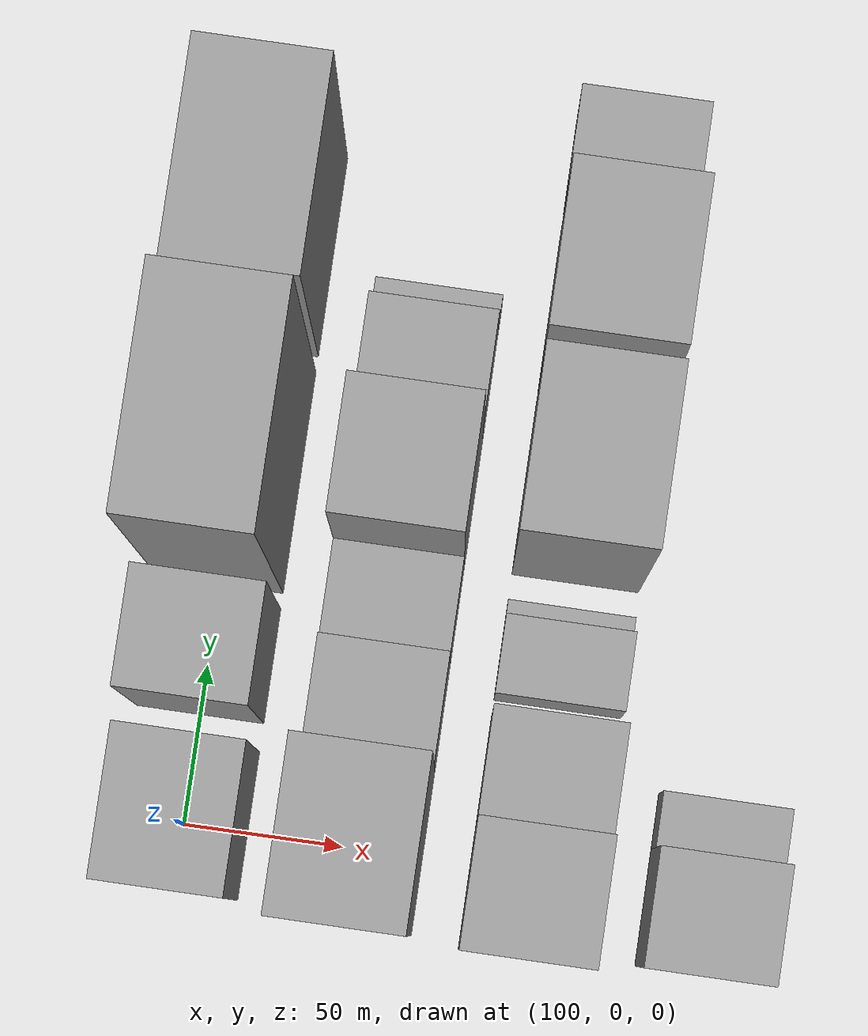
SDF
<sdf version="1.6">
 <world name="default">
  <model name="building_25">
   <static>1</static>
   <pose>100.0000 2.3220 0 0.000000 0.000000 0.000000</pose>
   <link name="link">
    <pose>0 0 43.50 0 0 0</pose>
    <collision name="collision"><geometry><box><size>40.0000 46.5383 87.0000</size></box></geometry></collision>
    <visual name="visual">
     <cast_shadows>0</cast_shadows>
     <geometry><box><size>40.0000 46.5383 87.0000</size></box></geometry>
     <material>
      <script>
       <uri>model://grey_wall/materials/scripts</uri>
       <uri>model://grey_wall/materials/textures</uri>
       <name>vrc/grey_wall</name>
      </script>
     </material>
    </visual>
   </link>
  </model>
  <model name="building_26">
   <static>1</static>
   <pose>100.0000 52.6891 0 0.000000 0.000000 0.000000</pose>
   <link name="link">
    <pose>0 0 52.50 0 0 0</pose>
    <collision name="collision"><geometry><box><size>40.0000 36.1959 105.0000</size></box></geometry></collision>
    <visual name="visual">
     <cast_shadows>0</cast_shadows>
     <geometry><box><size>40.0000 36.1959 105.0000</size></box></geometry>
     <material>
      <script>
       <uri>model://grey_wall/materials/scripts</uri>
       <uri>model://grey_wall/materials/textures</uri>
       <name>vrc/grey_wall</name>
      </script>
     </material>
    </visual>
   </link>
  </model>
  <model name="building_27">
   <static>1</static>
   <pose>100.0000 111.0224 0 0.000000 0.000000 0.000000</pose>
   <link name="link">
    <pose>0 0 97.50 0 0 0</pose>
    <collision name="collision"><geometry><box><size>40.0000 70.4707 195.0000</size></box></geometry></collision>
    <visual name="visual">
     <cast_shadows>0</cast_shadows>
     <geometry><box><size>40.0000 70.4707 195.0000</size></box></geometry>
     <material>
      <script>
       <uri>model://grey_wall/materials/scripts</uri>
       <uri>model://grey_wall/materials/textures</uri>
       <name>vrc/grey_wall</name>
      </script>
     </material>
    </visual>
   </link>
  </model>
  <model name="building_28">
   <static>1</static>
   <pose>100.0000 183.2015 0 0.000000 0.000000 0.000000</pose>
   <link name="link">
    <pose>0 0 81.00 0 0 0</pose>
    <collision name="collision"><geometry><box><size>40.0000 63.8877 162.0000</size></box></geometry></collision>
    <visual name="visual">
     <cast_shadows>0</cast_shadows>
     <geometry><box><size>40.0000 63.8877 162.0000</size></box></geometry>
     <material>
      <script>
       <uri>model://grey_wall/materials/scripts</uri>
       <uri>model://grey_wall/materials/textures</uri>
       <name>vrc/grey_wall</name>
      </script>
     </material>
    </visual>
   </link>
  </model>
  <model name="building_81">
   <static>1</static>
   <pose>155.0000 1.4963 0 0.000000 0.000000 0.000000</pose>
   <link name="link">
    <pose>0 0 79.50 0 0 0</pose>
    <collision name="collision"><geometry><box><size>40.0000 51.1767 159.0000</size></box></geometry></collision>
    <visual name="visual">
     <cast_shadows>0</cast_shadows>
     <geometry><box><size>40.0000 51.1767 159.0000</size></box></geometry>
     <material>
      <script>
       <uri>model://grey_wall/materials/scripts</uri>
       <uri>model://grey_wall/materials/textures</uri>
       <name>vrc/grey_wall</name>
      </script>
     </material>
    </visual>
   </link>
  </model>
  <model name="building_82">
   <static>1</static>
   <pose>155.0000 44.1281 0 0.000000 0.000000 0.000000</pose>
   <link name="link">
    <pose>0 0 31.50 0 0 0</pose>
    <collision name="collision"><geometry><box><size>40.0000 34.0868 63.0000</size></box></geometry></collision>
    <visual name="visual">
     <cast_shadows>0</cast_shadows>
     <geometry><box><size>40.0000 34.0868 63.0000</size></box></geometry>
     <material>
      <script>
       <uri>model://grey_wall/materials/scripts</uri>
       <uri>model://grey_wall/materials/textures</uri>
       <name>vrc/grey_wall</name>
      </script>
     </material>
    </visual>
   </link>
  </model>
  <model name="building_83">
   <static>1</static>
   <pose>155.0000 75.9721 0 0.000000 0.000000 0.000000</pose>
   <link name="link">
    <pose>0 0 25.50 0 0 0</pose>
    <collision name="collision"><geometry><box><size>40.0000 29.6012 51.0000</size></box></geometry></collision>
    <visual name="visual">
     <cast_shadows>0</cast_shadows>
     <geometry><box><size>40.0000 29.6012 51.0000</size></box></geometry>
     <material>
      <script>
       <uri>model://grey_wall/materials/scripts</uri>
       <uri>model://grey_wall/materials/textures</uri>
       <name>vrc/grey_wall</name>
      </script>
     </material>
    </visual>
   </link>
  </model>
  <model name="building_84">
   <static>1</static>
   <pose>155.0000 111.1873 0 0.000000 0.000000 0.000000</pose>
   <link name="link">
    <pose>0 0 64.50 0 0 0</pose>
    <collision name="collision"><geometry><box><size>40.0000 40.8293 129.0000</size></box></geometry></collision>
    <visual name="visual">
     <cast_shadows>0</cast_shadows>
     <geometry><box><size>40.0000 40.8293 129.0000</size></box></geometry>
     <material>
      <script>
       <uri>model://grey_wall/materials/scripts</uri>
       <uri>model://grey_wall/materials/textures</uri>
       <name>vrc/grey_wall</name>
      </script>
     </material>
    </visual>
   </link>
  </model>
  <model name="building_85">
   <static>1</static>
   <pose>155.0000 148.7007 0 0.000000 0.000000 0.000000</pose>
   <link name="link">
    <pose>0 0 28.50 0 0 0</pose>
    <collision name="collision"><geometry><box><size>40.0000 34.1975 57.0000</size></box></geometry></collision>
    <visual name="visual">
     <cast_shadows>0</cast_shadows>
     <geometry><box><size>40.0000 34.1975 57.0000</size></box></geometry>
     <material>
      <script>
       <uri>model://grey_wall/materials/scripts</uri>
       <uri>model://grey_wall/materials/textures</uri>
       <name>vrc/grey_wall</name>
      </script>
     </material>
    </visual>
   </link>
  </model>
  <model name="building_86">
   <static>1</static>
   <pose>155.0000 170.8605 0 0.000000 0.000000 0.000000</pose>
   <link name="link">
    <pose>0 0 10.50 0 0 0</pose>
    <collision name="collision"><geometry><box><size>40.0000 10.1222 21.0000</size></box></geometry></collision>
    <visual name="visual">
     <cast_shadows>0</cast_shadows>
     <geometry><box><size>40.0000 10.1222 21.0000</size></box></geometry>
     <material>
      <script>
       <uri>model://grey_wall/materials/scripts</uri>
       <uri>model://grey_wall/materials/textures</uri>
       <name>vrc/grey_wall</name>
      </script>
     </material>
    </visual>
   </link>
  </model>
  <model name="building_130">
   <static>1</static>
   <pose>210.0000 -6.4415 0 0.000000 0.000000 0.000000</pose>
   <link name="link">
    <pose>0 0 55.50 0 0 0</pose>
    <collision name="collision"><geometry><box><size>40.0000 38.8958 111.0000</size></box></geometry></collision>
    <visual name="visual">
     <cast_shadows>0</cast_shadows>
     <geometry><box><size>40.0000 38.8958 111.0000</size></box></geometry>
     <material>
      <script>
       <uri>model://grey_wall/materials/scripts</uri>
       <uri>model://grey_wall/materials/textures</uri>
       <name>vrc/grey_wall</name>
      </script>
     </material>
    </visual>
   </link>
  </model>
  <model name="building_131">
   <static>1</static>
   <pose>210.0000 29.5271 0 0.000000 0.000000 0.000000</pose>
   <link name="link">
    <pose>0 0 46.50 0 0 0</pose>
    <collision name="collision"><geometry><box><size>40.0000 33.0415 93.0000</size></box></geometry></collision>
    <visual name="visual">
     <cast_shadows>0</cast_shadows>
     <geometry><box><size>40.0000 33.0415 93.0000</size></box></geometry>
     <material>
      <script>
       <uri>model://grey_wall/materials/scripts</uri>
       <uri>model://grey_wall/materials/textures</uri>
       <name>vrc/grey_wall</name>
      </script>
     </material>
    </visual>
   </link>
  </model>
  <model name="building_132">
   <static>1</static>
   <pose>210.0000 64.2577 0 0.000000 0.000000 0.000000</pose>
   <link name="link">
    <pose>0 0 21.00 0 0 0</pose>
    <collision name="collision"><geometry><box><size>40.0000 24.4197 42.0000</size></box></geometry></collision>
    <visual name="visual">
     <cast_shadows>0</cast_shadows>
     <geometry><box><size>40.0000 24.4197 42.0000</size></box></geometry>
     <material>
      <script>
       <uri>model://grey_wall/materials/scripts</uri>
       <uri>model://grey_wall/materials/textures</uri>
       <name>vrc/grey_wall</name>
      </script>
     </material>
    </visual>
   </link>
  </model>
  <model name="building_133">
   <static>1</static>
   <pose>210.0000 79.6754 0 0.000000 0.000000 0.000000</pose>
   <link name="link">
    <pose>0 0 7.50 0 0 0</pose>
    <collision name="collision"><geometry><box><size>40.0000 6.4158 15.0000</size></box></geometry></collision>
    <visual name="visual">
     <cast_shadows>0</cast_shadows>
     <geometry><box><size>40.0000 6.4158 15.0000</size></box></geometry>
     <material>
      <script>
       <uri>model://grey_wall/materials/scripts</uri>
       <uri>model://grey_wall/materials/textures</uri>
       <name>vrc/grey_wall</name>
      </script>
     </material>
    </visual>
   </link>
  </model>
  <model name="building_134">
   <static>1</static>
   <pose>210.0000 118.9408 0 0.000000 0.000000 0.000000</pose>
   <link name="link">
    <pose>0 0 73.50 0 0 0</pose>
    <collision name="collision"><geometry><box><size>40.0000 54.1151 147.0000</size></box></geometry></collision>
    <visual name="visual">
     <cast_shadows>0</cast_shadows>
     <geometry><box><size>40.0000 54.1151 147.0000</size></box></geometry>
     <material>
      <script>
       <uri>model://grey_wall/materials/scripts</uri>
       <uri>model://grey_wall/materials/textures</uri>
       <name>vrc/grey_wall</name>
      </script>
     </material>
    </visual>
   </link>
  </model>
  <model name="building_135">
   <static>1</static>
   <pose>210.0000 174.5492 0 0.000000 0.000000 0.000000</pose>
   <link name="link">
    <pose>0 0 73.50 0 0 0</pose>
    <collision name="collision"><geometry><box><size>40.0000 49.1016 147.0000</size></box></geometry></collision>
    <visual name="visual">
     <cast_shadows>0</cast_shadows>
     <geometry><box><size>40.0000 49.1016 147.0000</size></box></geometry>
     <material>
      <script>
       <uri>model://grey_wall/materials/scripts</uri>
       <uri>model://grey_wall/materials/textures</uri>
       <name>vrc/grey_wall</name>
      </script>
     </material>
    </visual>
   </link>
  </model>
  <model name="building_136">
   <static>1</static>
   <pose>210.0000 222.1670 0 0.000000 0.000000 0.000000</pose>
   <link name="link">
    <pose>0 0 30.00 0 0 0</pose>
    <collision name="collision"><geometry><box><size>40.0000 30.1342 60.0000</size></box></geometry></collision>
    <visual name="visual">
     <cast_shadows>0</cast_shadows>
     <geometry><box><size>40.0000 30.1342 60.0000</size></box></geometry>
     <material>
      <script>
       <uri>model://grey_wall/materials/scripts</uri>
       <uri>model://grey_wall/materials/textures</uri>
       <name>vrc/grey_wall</name>
      </script>
     </material>
    </visual>
   </link>
  </model>
  <model name="building_184">
   <static>1</static>
   <pose>265.0000 -5.1891 0 0.000000 0.000000 0.000000</pose>
   <link name="link">
    <pose>0 0 31.50 0 0 0</pose>
    <collision name="collision"><geometry><box><size>40.0000 36.4895 63.0000</size></box></geometry></collision>
    <visual name="visual">
     <cast_shadows>0</cast_shadows>
     <geometry><box><size>40.0000 36.4895 63.0000</size></box></geometry>
     <material>
      <script>
       <uri>model://grey_wall/materials/scripts</uri>
       <uri>model://grey_wall/materials/textures</uri>
       <name>vrc/grey_wall</name>
      </script>
     </material>
    </visual>
   </link>
  </model>
  <model name="building_185">
   <static>1</static>
   <pose>265.0000 21.7609 0 0.000000 0.000000 0.000000</pose>
   <link name="link">
    <pose>0 0 16.50 0 0 0</pose>
    <collision name="collision"><geometry><box><size>40.0000 17.4106 33.0000</size></box></geometry></collision>
    <visual name="visual">
     <cast_shadows>0</cast_shadows>
     <geometry><box><size>40.0000 17.4106 33.0000</size></box></geometry>
     <material>
      <script>
       <uri>model://grey_wall/materials/scripts</uri>
       <uri>model://grey_wall/materials/textures</uri>
       <name>vrc/grey_wall</name>
      </script>
     </material>
    </visual>
   </link>
  </model>
 </world>
</sdf>
